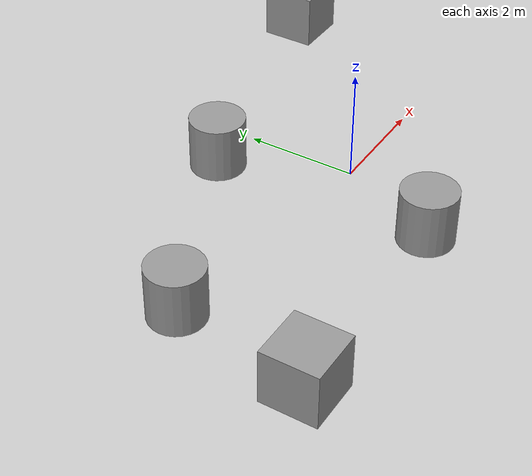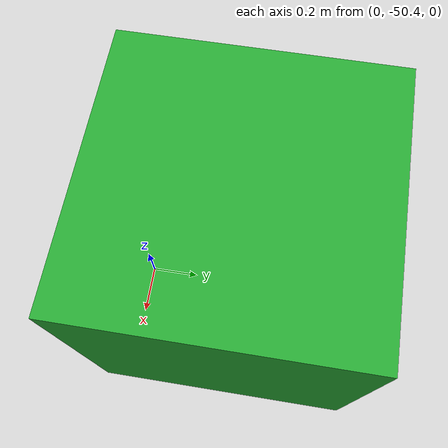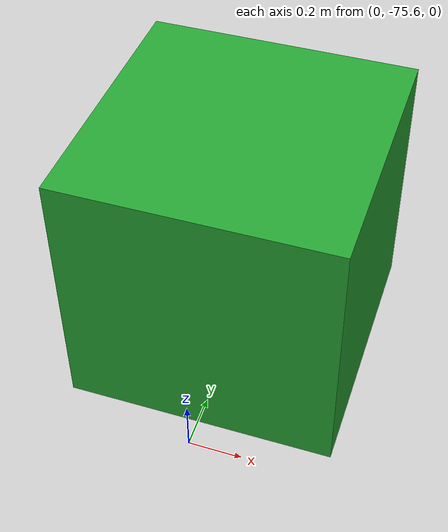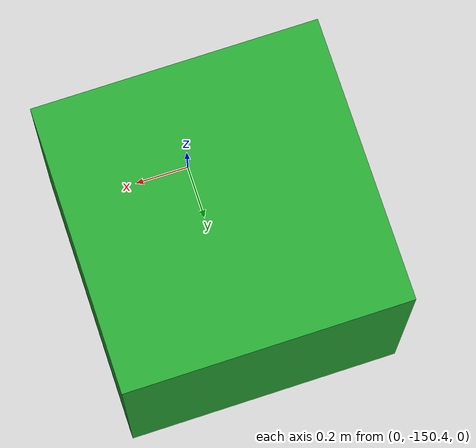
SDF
<sdf version='1.7'>
  <world name='default'>
    <light name='sun' type='directional'>
      <cast_shadows>1</cast_shadows>
      <pose>0 0 10 0 -0 0</pose>
      <diffuse>0.8 0.8 0.8 1</diffuse>
      <specular>0.2 0.2 0.2 1</specular>
      <attenuation>
        <range>1000</range>
        <constant>0.9</constant>
        <linear>0.01</linear>
        <quadratic>0.001</quadratic>
      </attenuation>
      <direction>-0.5 0.1 -0.9</direction>
      <spot>
        <inner_angle>0</inner_angle>
        <outer_angle>0</outer_angle>
        <falloff>0</falloff>
      </spot>
    </light>
    <model name='ground_plane'>
      <static>1</static>
      <link name='link'>
        <collision name='collision'>
          <geometry>
            <plane>
              <normal>0 0 1</normal>
              <size>5000 5000</size>
            </plane>
          </geometry>
          <surface>
            <contact>
              <collide_bitmask>65535</collide_bitmask>
              <ode/>
            </contact>
            <friction>
              <ode>
                <mu>100</mu>
                <mu2>50</mu2>
              </ode>
              <torsional>
                <ode/>
              </torsional>
            </friction>
            <bounce/>
          </surface>
          <max_contacts>10</max_contacts>
        </collision>
        <visual name='visual'>
          <cast_shadows>0</cast_shadows>
          <geometry>
            <plane>
              <normal>0 0 1</normal>
              <size>5000 5000</size>
            </plane>
          </geometry>
          <material>
            <script>
              <uri>file://media/materials/scripts/gazebo.material</uri>
              <name>Gazebo/Grey</name>
            </script>
          </material>
        </visual>
        <self_collide>0</self_collide>
        <enable_wind>0</enable_wind>
        <kinematic>0</kinematic>
      </link>
    </model>
    <gravity>0 0 -9.8</gravity>
    <magnetic_field>6e-06 2.3e-05 -4.2e-05</magnetic_field>
    <atmosphere type='adiabatic'/>
    <physics type='ode'>
      <max_step_size>0.001</max_step_size>
      <real_time_factor>1</real_time_factor>
      <real_time_update_rate>1000</real_time_update_rate>
    </physics>
    <scene>
      <ambient>0.4 0.4 0.4 1</ambient>
      <background>0.7 0.7 0.7 1</background>
      <shadows>1</shadows>
    </scene>
    <wind/>
    <spherical_coordinates>
      <surface_model>EARTH_WGS84</surface_model>
      <latitude_deg>0</latitude_deg>
      <longitude_deg>0</longitude_deg>
      <elevation>0</elevation>
      <heading_deg>0</heading_deg>
    </spherical_coordinates>

    <model name='unit_box'>
      <pose>-7.27143 3.09748 0.5 0 -0 0</pose>
      <link name='link'>
        <inertial>
          <mass>1</mass>
          <inertia>
            <ixx>0.166667</ixx>
            <ixy>0</ixy>
            <ixz>0</ixz>
            <iyy>0.166667</iyy>
            <iyz>0</iyz>
            <izz>0.166667</izz>
          </inertia>
          <pose>0 0 0 0 -0 0</pose>
        </inertial>
        <collision name='collision'>
          <geometry>
            <box>
              <size>1 1 1</size>
            </box>
          </geometry>
          <surface>
            <contact>
              <ode/>
            </contact>
            <bounce/>
            <friction>
              <torsional>
                <ode/>
              </torsional>
              <ode/>
            </friction>
          </surface>
          <max_contacts>10</max_contacts>
        </collision>
        <visual name='visual'>
          <geometry>
            <box>
              <size>1 1 1</size>
            </box>
          </geometry>
          <material>
            <script>
              <name>Gazebo/Grey</name>
              <uri>file://media/materials/scripts/gazebo.material</uri>
            </script>
          </material>
        </visual>
        <self_collide>0</self_collide>
        <enable_wind>0</enable_wind>
        <kinematic>0</kinematic>
      </link>
    </model>
    <model name='unit_cylinder'>
      <pose>-4.57746 0.509886 0.5 0 -0 0</pose>
      <link name='link'>
        <inertial>
          <mass>1</mass>
          <inertia>
            <ixx>0.145833</ixx>
            <ixy>0</ixy>
            <ixz>0</ixz>
            <iyy>0.145833</iyy>
            <iyz>0</iyz>
            <izz>0.125</izz>
          </inertia>
          <pose>0 0 0 0 -0 0</pose>
        </inertial>
        <collision name='collision'>
          <geometry>
            <cylinder>
              <radius>0.5</radius>
              <length>1</length>
            </cylinder>
          </geometry>
          <surface>
            <contact>
              <ode/>
            </contact>
            <bounce/>
            <friction>
              <torsional>
                <ode/>
              </torsional>
              <ode/>
            </friction>
          </surface>
          <max_contacts>10</max_contacts>
        </collision>
        <visual name='visual'>
          <geometry>
            <cylinder>
              <radius>0.5</radius>
              <length>1</length>
            </cylinder>
          </geometry>
          <material>
            <script>
              <name>Gazebo/Grey</name>
              <uri>file://media/materials/scripts/gazebo.material</uri>
            </script>
          </material>
        </visual>
        <self_collide>0</self_collide>
        <enable_wind>0</enable_wind>
        <kinematic>0</kinematic>
      </link>
    </model>

    <gui fullscreen='0'>
      <camera name='user_camera'>
        <pose>-2.68744 -4.4037 20.9537 -0 1.31164 1.40819</pose>
        <view_controller>orbit</view_controller>
        <projection_type>perspective</projection_type>
      </camera>
    </gui>
    <model name='unit_box_0'>
      <pose>-4.96407 -2.00354 0.5 0 -0 0</pose>
      <link name='link'>
        <inertial>
          <mass>1</mass>
          <inertia>
            <ixx>0.166667</ixx>
            <ixy>0</ixy>
            <ixz>0</ixz>
            <iyy>0.166667</iyy>
            <iyz>0</iyz>
            <izz>0.166667</izz>
          </inertia>
          <pose>0 0 0 0 -0 0</pose>
        </inertial>
        <collision name='collision'>
          <geometry>
            <box>
              <size>1 1 1</size>
            </box>
          </geometry>
          <surface>
            <contact>
              <ode/>
            </contact>
            <bounce/>
            <friction>
              <torsional>
                <ode/>
              </torsional>
              <ode/>
            </friction>
          </surface>
          <max_contacts>10</max_contacts>
        </collision>
        <visual name='visual'>
          <geometry>
            <box>
              <size>1 1 1</size>
            </box>
          </geometry>
          <material>
            <script>
              <name>Gazebo/Grey</name>
              <uri>file://media/materials/scripts/gazebo.material</uri>
            </script>
          </material>
        </visual>
        <self_collide>0</self_collide>
        <enable_wind>0</enable_wind>
        <kinematic>0</kinematic>
      </link>
    </model>
    <model name='unit_box_1'>
      <pose>3.83312 3.3034 0.5 0 -0 0</pose>
      <link name='link'>
        <inertial>
          <mass>1</mass>
          <inertia>
            <ixx>0.166667</ixx>
            <ixy>0</ixy>
            <ixz>0</ixz>
            <iyy>0.166667</iyy>
            <iyz>0</iyz>
            <izz>0.166667</izz>
          </inertia>
          <pose>0 0 0 0 -0 0</pose>
        </inertial>
        <collision name='collision'>
          <geometry>
            <box>
              <size>1 1 1</size>
            </box>
          </geometry>
          <surface>
            <contact>
              <ode/>
            </contact>
            <bounce/>
            <friction>
              <torsional>
                <ode/>
              </torsional>
              <ode/>
            </friction>
          </surface>
          <max_contacts>10</max_contacts>
        </collision>
        <visual name='visual'>
          <geometry>
            <box>
              <size>1 1 1</size>
            </box>
          </geometry>
          <material>
            <script>
              <name>Gazebo/Grey</name>
              <uri>file://media/materials/scripts/gazebo.material</uri>
            </script>
          </material>
        </visual>
        <self_collide>0</self_collide>
        <enable_wind>0</enable_wind>
        <kinematic>0</kinematic>
      </link>
    </model>
    <model name='unit_cylinder_0'>
      <pose>-0.988144 2.12658 0.5 0 -0 0</pose>
      <link name='link'>
        <inertial>
          <mass>1</mass>
          <inertia>
            <ixx>0.145833</ixx>
            <ixy>0</ixy>
            <ixz>0</ixz>
            <iyy>0.145833</iyy>
            <iyz>0</iyz>
            <izz>0.125</izz>
          </inertia>
          <pose>0 0 0 0 -0 0</pose>
        </inertial>
        <collision name='collision'>
          <geometry>
            <cylinder>
              <radius>0.5</radius>
              <length>1</length>
            </cylinder>
          </geometry>
          <surface>
            <contact>
              <ode/>
            </contact>
            <bounce/>
            <friction>
              <torsional>
                <ode/>
              </torsional>
              <ode/>
            </friction>
          </surface>
          <max_contacts>10</max_contacts>
        </collision>
        <visual name='visual'>
          <geometry>
            <cylinder>
              <radius>0.5</radius>
              <length>1</length>
            </cylinder>
          </geometry>
          <material>
            <script>
              <name>Gazebo/Grey</name>
              <uri>file://media/materials/scripts/gazebo.material</uri>
            </script>
          </material>
        </visual>
        <self_collide>0</self_collide>
        <enable_wind>0</enable_wind>
        <kinematic>0</kinematic>
      </link>
    </model>
    <model name='unit_cylinder_1'>
      <pose>-0.890578 -1.90634 0.5 0 -0 0</pose>
      <link name='link'>
        <inertial>
          <mass>1</mass>
          <inertia>
            <ixx>0.145833</ixx>
            <ixy>0</ixy>
            <ixz>0</ixz>
            <iyy>0.145833</iyy>
            <iyz>0</iyz>
            <izz>0.125</izz>
          </inertia>
          <pose>0 0 0 0 -0 0</pose>
        </inertial>
        <collision name='collision'>
          <geometry>
            <cylinder>
              <radius>0.5</radius>
              <length>1</length>
            </cylinder>
          </geometry>
          <surface>
            <contact>
              <ode/>
            </contact>
            <bounce/>
            <friction>
              <torsional>
                <ode/>
              </torsional>
              <ode/>
            </friction>
          </surface>
          <max_contacts>10</max_contacts>
        </collision>
        <visual name='visual'>
          <geometry>
            <cylinder>
              <radius>0.5</radius>
              <length>1</length>
            </cylinder>
          </geometry>
          <material>
            <script>
              <name>Gazebo/Grey</name>
              <uri>file://media/materials/scripts/gazebo.material</uri>
            </script>
          </material>
        </visual>
        <self_collide>0</self_collide>
        <enable_wind>0</enable_wind>
        <kinematic>0</kinematic>
      </link>
    </model>
    <model name='dynamic_obstacle_1'>
      <pose>100 75 0.5 0 0 0</pose>
      <link name='link'>
        <inertial>
          <mass>2</mass>
          <inertia>
            <ixx>0.1333</ixx>
            <ixy>0</ixy>
            <ixz>0</ixz>
            <iyy>0.1333</iyy>
            <iyz>0</iyz>
            <izz>0.1333</izz>
          </inertia>
          <pose>0 0 0 0 -0 0</pose>
        </inertial>
        <collision name='collision'>
          <geometry>
            <box>
              <size>1 1 1</size>
            </box>
          </geometry>
          <surface>
            <contact>
              <ode/>
            </contact>
            <bounce/>
            <friction>
              <torsional>
                <ode/>
              </torsional>
              <ode/>
            </friction>
          </surface>
          <max_contacts>10</max_contacts>
        </collision>
        <visual name='visual'>
          <geometry>
            <box>
              <size>1 1 1</size>
            </box>
          </geometry>
          <material>
            <script>
              <name>Gazebo/Red</name>
              <uri>file://media/materials/scripts/gazebo.material</uri>
            </script>
          </material>
        </visual>
        <self_collide>0</self_collide>
        <enable_wind>0</enable_wind>
        <kinematic>0</kinematic>
      </link>
    </model>
    <model name='dynamic_obstacle_2'>
      <pose>-125 100 0.5 0 0 0</pose>
      <link name='link'>
        <inertial>
          <mass>1.5</mass>
          <inertia>
            <ixx>0.125</ixx>
            <ixy>0</ixy>
            <ixz>0</ixz>
            <iyy>0.125</iyy>
            <iyz>0</iyz>
            <izz>0.125</izz>
          </inertia>
          <pose>0 0 0 0 -0 0</pose>
        </inertial>
        <collision name='collision'>
          <geometry>
            <box>
              <size>0.8 0.8 0.8</size>
            </box>
          </geometry>
          <surface>
            <contact>
              <ode/>
            </contact>
            <bounce/>
            <friction>
              <torsional>
                <ode/>
              </torsional>
              <ode/>
            </friction>
          </surface>
          <max_contacts>10</max_contacts>
        </collision>
        <visual name='visual'>
          <geometry>
            <box>
              <size>0.8 0.8 0.8</size>
            </box>
          </geometry>
          <material>
            <script>
              <name>Gazebo/Blue</name>
              <uri>file://media/materials/scripts/gazebo.material</uri>
            </script>
          </material>
        </visual>
        <self_collide>0</self_collide>
        <enable_wind>0</enable_wind>
        <kinematic>0</kinematic>
      </link>
    </model>

    <!-- 5 elliptical motion obstacles at x=0, y=-50,-75,-100,-125,-150 (spacing halved) -->
    <model name='dynamic_obstacle_3'>
      <pose>0 -50 0.5 0 0 0</pose>
      <link name='link'>
        <inertial>
          <mass>1.5</mass>
          <inertia>
            <ixx>0.125</ixx>
            <ixy>0</ixy>
            <ixz>0</ixz>
            <iyy>0.125</iyy>
            <iyz>0</iyz>
            <izz>0.125</izz>
          </inertia>
          <pose>0 0 0 0 -0 0</pose>
        </inertial>
        <collision name='collision'>
          <geometry>
            <box>
              <size>1 1 1</size>
            </box>
          </geometry>
          <surface>
            <contact>
              <ode/>
            </contact>
            <bounce/>
            <friction>
              <torsional>
                <ode/>
              </torsional>
              <ode/>
            </friction>
          </surface>
          <max_contacts>10</max_contacts>
        </collision>
        <visual name='visual'>
          <geometry>
            <box>
              <size>1 1 1</size>
            </box>
          </geometry>
          <material>
            <script>
              <name>Gazebo/Green</name>
              <uri>file://media/materials/scripts/gazebo.material</uri>
            </script>
          </material>
        </visual>
        <self_collide>0</self_collide>
        <enable_wind>0</enable_wind>
        <kinematic>0</kinematic>
      </link>
    </model>

    <model name='dynamic_obstacle_4'>
      <pose>0 -75 0.5 0 0 0</pose>
      <link name='link'>
        <inertial>
          <mass>1.5</mass>
          <inertia>
            <ixx>0.125</ixx>
            <ixy>0</ixy>
            <ixz>0</ixz>
            <iyy>0.125</iyy>
            <iyz>0</iyz>
            <izz>0.125</izz>
          </inertia>
          <pose>0 0 0 0 -0 0</pose>
        </inertial>
        <collision name='collision'>
          <geometry>
            <box>
              <size>1 1 1</size>
            </box>
          </geometry>
          <surface>
            <contact>
              <ode/>
            </contact>
            <bounce/>
            <friction>
              <torsional>
                <ode/>
              </torsional>
              <ode/>
            </friction>
          </surface>
          <max_contacts>10</max_contacts>
        </collision>
        <visual name='visual'>
          <geometry>
            <box>
              <size>1 1 1</size>
            </box>
          </geometry>
          <material>
            <script>
              <name>Gazebo/Green</name>
              <uri>file://media/materials/scripts/gazebo.material</uri>
            </script>
          </material>
        </visual>
        <self_collide>0</self_collide>
        <enable_wind>0</enable_wind>
        <kinematic>0</kinematic>
      </link>
    </model>

    <model name='dynamic_obstacle_5'>
      <pose>0 -100 0.5 0 0 0</pose>
      <link name='link'>
        <inertial>
          <mass>1.5</mass>
          <inertia>
            <ixx>0.125</ixx>
            <ixy>0</ixy>
            <ixz>0</ixz>
            <iyy>0.125</iyy>
            <iyz>0</iyz>
            <izz>0.125</izz>
          </inertia>
          <pose>0 0 0 0 -0 0</pose>
        </inertial>
        <collision name='collision'>
          <geometry>
            <box>
              <size>1 1 1</size>
            </box>
          </geometry>
          <surface>
            <contact>
              <ode/>
            </contact>
            <bounce/>
            <friction>
              <torsional>
                <ode/>
              </torsional>
              <ode/>
            </friction>
          </surface>
          <max_contacts>10</max_contacts>
        </collision>
        <visual name='visual'>
          <geometry>
            <box>
              <size>1 1 1</size>
            </box>
          </geometry>
          <material>
            <script>
              <name>Gazebo/Green</name>
              <uri>file://media/materials/scripts/gazebo.material</uri>
            </script>
          </material>
        </visual>
        <self_collide>0</self_collide>
        <enable_wind>0</enable_wind>
        <kinematic>0</kinematic>
      </link>
    </model>

    <model name='dynamic_obstacle_6'>
      <pose>0 -125 0.5 0 0 0</pose>
      <link name='link'>
        <inertial>
          <mass>1.5</mass>
          <inertia>
            <ixx>0.125</ixx>
            <ixy>0</ixy>
            <ixz>0</ixz>
            <iyy>0.125</iyy>
            <iyz>0</iyz>
            <izz>0.125</izz>
          </inertia>
          <pose>0 0 0 0 -0 0</pose>
        </inertial>
        <collision name='collision'>
          <geometry>
            <box>
              <size>1 1 1</size>
            </box>
          </geometry>
          <surface>
            <contact>
              <ode/>
            </contact>
            <bounce/>
            <friction>
              <torsional>
                <ode/>
              </torsional>
              <ode/>
            </friction>
          </surface>
          <max_contacts>10</max_contacts>
        </collision>
        <visual name='visual'>
          <geometry>
            <box>
              <size>1 1 1</size>
            </box>
          </geometry>
          <material>
            <script>
              <name>Gazebo/Green</name>
              <uri>file://media/materials/scripts/gazebo.material</uri>
            </script>
          </material>
        </visual>
        <self_collide>0</self_collide>
        <enable_wind>0</enable_wind>
        <kinematic>0</kinematic>
      </link>
    </model>

    <model name='dynamic_obstacle_7'>
      <pose>0 -150 0.5 0 0 0</pose>
      <link name='link'>
        <inertial>
          <mass>1.5</mass>
          <inertia>
            <ixx>0.125</ixx>
            <ixy>0</ixy>
            <ixz>0</ixz>
            <iyy>0.125</iyy>
            <iyz>0</iyz>
            <izz>0.125</izz>
          </inertia>
          <pose>0 0 0 0 -0 0</pose>
        </inertial>
        <collision name='collision'>
          <geometry>
            <box>
              <size>1 1 1</size>
            </box>
          </geometry>
          <surface>
            <contact>
              <ode/>
            </contact>
            <bounce/>
            <friction>
              <torsional>
                <ode/>
              </torsional>
              <ode/>
            </friction>
          </surface>
          <max_contacts>10</max_contacts>
        </collision>
        <visual name='visual'>
          <geometry>
            <box>
              <size>1 1 1</size>
            </box>
          </geometry>
          <material>
            <script>
              <name>Gazebo/Green</name>
              <uri>file://media/materials/scripts/gazebo.material</uri>
            </script>
          </material>
        </visual>
        <self_collide>0</self_collide>
        <enable_wind>0</enable_wind>
        <kinematic>0</kinematic>
      </link>
    </model>
  </world>
</sdf>
